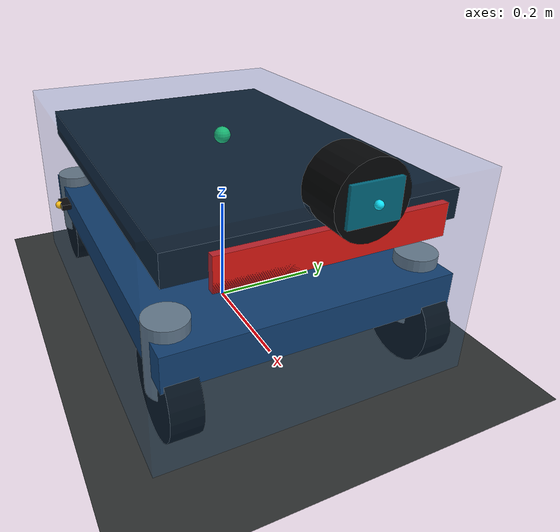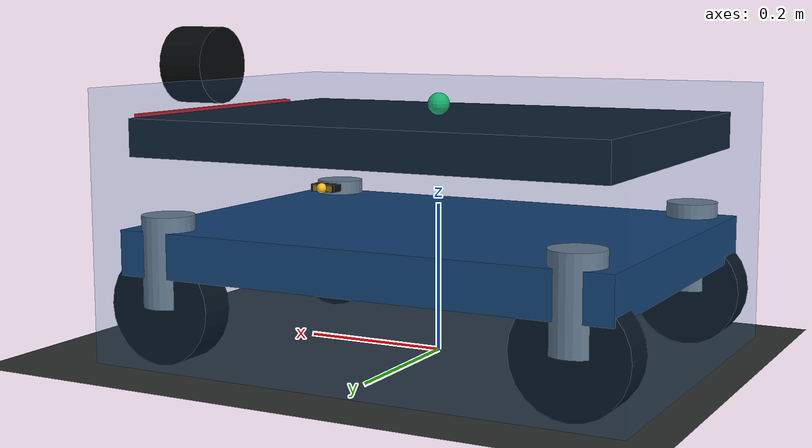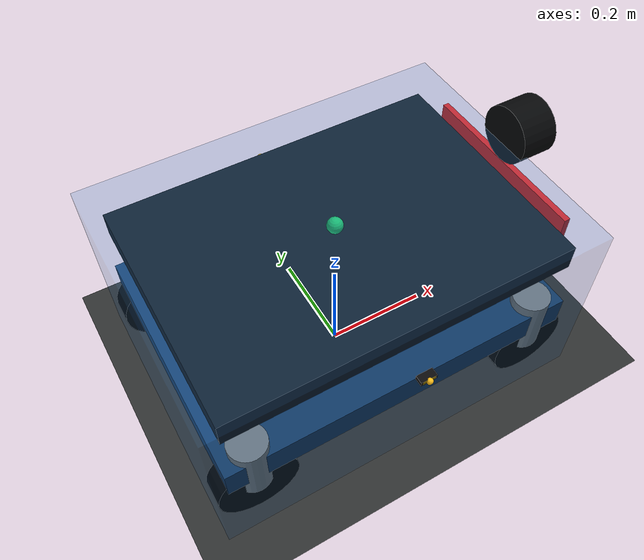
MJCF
<mujoco model="four_swerve_chassis">
  <compiler angle="radian" autolimits="true"/>
  <option timestep="0.002" gravity="0 0 -9.81" integrator="implicitfast"/>

  <asset>
    <material name="grid" rgba="0.18 0.19 0.19 1"
              reflectance="0.08" specular="0.05"/>
    <material name="body_blue" rgba="0.08 0.24 0.42 1"/>
    <material name="body_dark" rgba="0.05 0.07 0.09 1"/>
    <material name="module_metal" rgba="0.48 0.52 0.55 1"/>
    <material name="wheel_rubber" rgba="0.02 0.02 0.018 1"/>
    <material name="front_marker" rgba="0.9 0.1 0.08 1"/>
    <material name="lidar_black" rgba="0.02 0.025 0.03 1"/>
    <material name="lidar_window" rgba="0.05 0.8 0.95 0.55"/>
    <material name="tof_body" rgba="0.04 0.04 0.045 1"/>
    <material name="tof_window" rgba="0.9 0.75 0.08 0.65"/>
  </asset>

  <default>
    <joint damping="0.02" armature="0.002"/>
    <geom friction="3 0.02 0.005" condim="3" margin="0.001"/>
    <default class="steer_joint">
      <joint type="hinge" axis="0 0 1" range="-3.14159 3.14159"
             damping="0.25" armature="0.01"/>
    </default>
    <default class="wheel_joint">
      <joint type="hinge" axis="0 1 0" damping="0.01" armature="0.004"/>
    </default>
    <default class="wheel_geom">
      <geom type="cylinder" size="0.075 0.025" quat="0.7071068 0.7071068 0 0"
            material="wheel_rubber" mass="1.2" priority="1" group="0"/>
    </default>
  </default>

  <worldbody>
    <light name="sun" directional="true" pos="0 0 5" dir="-0.3 -0.4 -1"/>
    <geom name="floor" type="plane" size="3 3 0.05" material="grid"/>

    <!--
      Coordinate convention:
      x points forward, y points left, z points upward.
      The transparent envelope is 730 x 540 x 360 mm.
    -->
    <body name="base_link" pos="0 0 0.18">
      <freejoint/>
      <inertial pos="0 0 0" mass="35"
                diaginertia="1.23 1.93 2.41"/>

      <geom name="base_size_envelope" type="box" size="0.365 0.270 0.180"
            rgba="0.1 0.4 0.7 0.12" contype="0" conaffinity="0"
            group="0"/>
      <geom name="base_collision" type="box" size="0.365 0.270 0.120"
            rgba="0.1 0.4 0.7 0.0" contype="1" conaffinity="1"
            group="3"/>
      <geom name="lower_plate" type="box" pos="0 0 -0.035"
            size="0.340 0.245 0.030" material="body_blue"
            contype="0" conaffinity="0" group="0"/>
      <geom name="upper_plate" type="box" pos="0 0 0.115"
            size="0.330 0.235 0.025" material="body_dark"
            contype="0" conaffinity="0" group="0"/>
      <geom name="front_marker" type="box" pos="0.359 0 0.115"
            size="0.006 0.180 0.026" material="front_marker"
            contype="0" conaffinity="0" group="0"/>

      <body name="lidar_link" pos="0.385 0 0.200">
        <geom name="lidar_body" type="cylinder" size="0.055 0.035"
              quat="0.7071068 0 0.7071068 0" material="lidar_black"
              density="0" contype="0" conaffinity="0" group="0"/>
        <geom name="lidar_front_window" type="box" pos="0.035 0 0"
              size="0.006 0.038 0.028" material="lidar_window"
              density="0" contype="0" conaffinity="0" group="0"/>
        <site name="lidar_site" pos="0.045 0 0"
              quat="0.7071068 0 0.7071068 0"
              size="0.006" rgba="0.05 0.9 1 1"/>
      </body>

      <body name="left_tof_link" pos="0 0.286 0.075">
        <geom name="left_tof_body" type="box" size="0.015625 0.007675 0.004390"
              material="tof_body" density="0" contype="0" conaffinity="0"
              group="0"/>
        <geom name="left_tof_window" type="box" pos="0 0.008175 0"
              size="0.012000 0.000500 0.003200" material="tof_window"
              density="0" contype="0" conaffinity="0" group="0"/>
        <site name="left_tof_site" pos="0 0.009000 0"
              quat="0.7071068 0 0 0.7071068"
              size="0.006" rgba="1.0 0.75 0.1 1"/>
      </body>

      <body name="right_tof_link" pos="0 -0.286 0.075">
        <geom name="right_tof_body" type="box" size="0.015625 0.007675 0.004390"
              material="tof_body" density="0" contype="0" conaffinity="0"
              group="0"/>
        <geom name="right_tof_window" type="box" pos="0 -0.008175 0"
              size="0.012000 0.000500 0.003200" material="tof_window"
              density="0" contype="0" conaffinity="0" group="0"/>
        <site name="right_tof_site" pos="0 -0.009000 0"
              quat="0.7071068 0 0 -0.7071068"
              size="0.006" rgba="1.0 0.75 0.1 1"/>
      </body>

      <body name="front_left_steer_link" pos="0.285 0.215 -0.105">
        <joint name="front_left_steer_joint" class="steer_joint"/>
        <geom name="front_left_steer_post" type="cylinder" pos="0 0 0.060"
              size="0.035 0.060" material="module_metal" mass="0.4"
              contype="0" conaffinity="0" group="0"/>
        <body name="front_left_wheel_link">
          <joint name="front_left_wheel_joint" class="wheel_joint"/>
          <geom name="front_left_wheel" class="wheel_geom"/>
        </body>
      </body>

      <body name="front_right_steer_link" pos="0.285 -0.215 -0.105">
        <joint name="front_right_steer_joint" class="steer_joint"/>
        <geom name="front_right_steer_post" type="cylinder" pos="0 0 0.060"
              size="0.035 0.060" material="module_metal" mass="0.4"
              contype="0" conaffinity="0" group="0"/>
        <body name="front_right_wheel_link">
          <joint name="front_right_wheel_joint" class="wheel_joint"/>
          <geom name="front_right_wheel" class="wheel_geom"/>
        </body>
      </body>

      <body name="rear_left_steer_link" pos="-0.285 0.215 -0.105">
        <joint name="rear_left_steer_joint" class="steer_joint"/>
        <geom name="rear_left_steer_post" type="cylinder" pos="0 0 0.060"
              size="0.035 0.060" material="module_metal" mass="0.4"
              contype="0" conaffinity="0" group="0"/>
        <body name="rear_left_wheel_link">
          <joint name="rear_left_wheel_joint" class="wheel_joint"/>
          <geom name="rear_left_wheel" class="wheel_geom"/>
        </body>
      </body>

      <body name="rear_right_steer_link" pos="-0.285 -0.215 -0.105">
        <joint name="rear_right_steer_joint" class="steer_joint"/>
        <geom name="rear_right_steer_post" type="cylinder" pos="0 0 0.060"
              size="0.035 0.060" material="module_metal" mass="0.4"
              contype="0" conaffinity="0" group="0"/>
        <body name="rear_right_wheel_link">
          <joint name="rear_right_wheel_joint" class="wheel_joint"/>
          <geom name="rear_right_wheel" class="wheel_geom"/>
        </body>
      </body>

      <site name="imu_site" pos="0 0 0.155" size="0.015" rgba="0.1 0.8 0.4 1"/>
    </body>
  </worldbody>

  <contact>
    <exclude body1="base_link" body2="front_left_wheel_link"/>
    <exclude body1="base_link" body2="front_right_wheel_link"/>
    <exclude body1="base_link" body2="rear_left_wheel_link"/>
    <exclude body1="base_link" body2="rear_right_wheel_link"/>
  </contact>

  <!-- Control order: 4 steering angles in rad, then 4 wheel speeds in rad/s. -->
  <actuator>
    <position name="front_left_steer_pos" joint="front_left_steer_joint"
              kp="240" kv="8" ctrlrange="-3.14159 3.14159" forcerange="-60 60"/>
    <position name="front_right_steer_pos" joint="front_right_steer_joint"
              kp="240" kv="8" ctrlrange="-3.14159 3.14159" forcerange="-60 60"/>
    <position name="rear_left_steer_pos" joint="rear_left_steer_joint"
              kp="240" kv="8" ctrlrange="-3.14159 3.14159" forcerange="-60 60"/>
    <position name="rear_right_steer_pos" joint="rear_right_steer_joint"
              kp="240" kv="8" ctrlrange="-3.14159 3.14159" forcerange="-60 60"/>

    <velocity name="front_left_wheel_vel" joint="front_left_wheel_joint"
              kv="240" ctrlrange="-60 60" forcerange="-40 40"/>
    <velocity name="front_right_wheel_vel" joint="front_right_wheel_joint"
              kv="240" ctrlrange="-60 60" forcerange="-40 40"/>
    <velocity name="rear_left_wheel_vel" joint="rear_left_wheel_joint"
              kv="240" ctrlrange="-60 60" forcerange="-40 40"/>
    <velocity name="rear_right_wheel_vel" joint="rear_right_wheel_joint"
              kv="240" ctrlrange="-60 60" forcerange="-40 40"/>
  </actuator>

  <sensor>
    <jointpos name="front_left_steer_pos_sensor" joint="front_left_steer_joint"/>
    <jointpos name="front_right_steer_pos_sensor" joint="front_right_steer_joint"/>
    <jointpos name="rear_left_steer_pos_sensor" joint="rear_left_steer_joint"/>
    <jointpos name="rear_right_steer_pos_sensor" joint="rear_right_steer_joint"/>

    <jointvel name="front_left_wheel_vel_sensor" joint="front_left_wheel_joint"/>
    <jointvel name="front_right_wheel_vel_sensor" joint="front_right_wheel_joint"/>
    <jointvel name="rear_left_wheel_vel_sensor" joint="rear_left_wheel_joint"/>
    <jointvel name="rear_right_wheel_vel_sensor" joint="rear_right_wheel_joint"/>

    <gyro name="imu_gyro" site="imu_site"/>
    <accelerometer name="imu_accel" site="imu_site"/>
  </sensor>
</mujoco>
